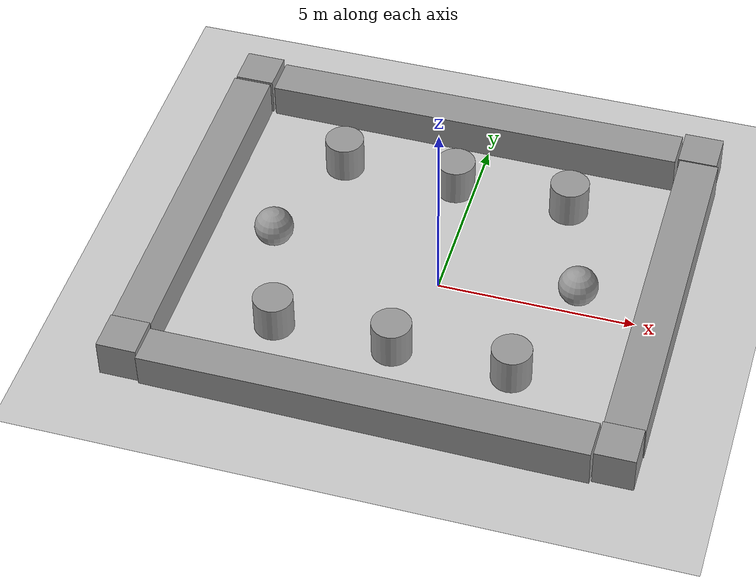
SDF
<sdf version="1.7">
 <world name="default">
  <light name="sun" type="directional">
   <pose>0 0 10 0 -0 0</pose>
   <diffuse>0.8 0.8 0.8 1</diffuse>
   <specular>0.2 0.2 0.2 1</specular>
   <attenuation>
    <range>1000</range>
    <constant>0.9</constant>
    <linear>0.01</linear>
    <quadratic>0.001</quadratic>
   </attenuation>
   <direction>-0.5 0.1 -0.9</direction>
   <spot><inner_angle>0</inner_angle><outer_angle>0</outer_angle><falloff>0</falloff></spot>
  </light>
  <model name="ground_plane">
   <static>1</static>
   <link name="link">
    <collision name="collision">
     <geometry><plane><normal>0 0 1</normal><size>100 100</size></plane></geometry>
     <surface><friction><ode><mu>100</mu><mu2>50</mu2></ode></friction></surface>
    </collision>
    <visual name="visual">
     <cast_shadows>0</cast_shadows>
     <geometry><plane><normal>0 0 1</normal><size>100 100</size></plane></geometry>
     <material>
      <script><uri>file://media/materials/scripts/gazebo.material</uri><name>Gazebo/Grey</name></script>
     </material>
    </visual>
   </link>
  </model>
  <gravity>0 0 -9.8</gravity>
  <magnetic_field>6e-06 2.3e-05 -4.2e-05</magnetic_field>
  <atmosphere type="adiabatic"/>
  <physics type="ode">
   <max_step_size>0.001</max_step_size>
   <real_time_factor>1</real_time_factor>
   <real_time_update_rate>1000</real_time_update_rate>
  </physics>
  <scene><ambient>0.4 0.4 0.4 1</ambient><background>0.7 0.7 0.7 1</background><shadows>1</shadows></scene>
  <audio><device>default</device></audio>
  <spherical_coordinates>
   <surface_model>EARTH_WGS84</surface_model>
   <latitude_deg>0</latitude_deg>
   <longitude_deg>0</longitude_deg>
   <elevation>0</elevation>
   <heading_deg>0</heading_deg>
  </spherical_coordinates>
  <model name="unit_box">
   <pose>5.49655 5.59448 0.499105 0 7e-06 0.00106</pose>
   <link name="link">
    <inertial>
     <mass>1</mass>
     <inertia>
      <ixx>0.166667</ixx>
      <ixy>0</ixy>
      <ixz>0</ixz>
      <iyy>0.166667</iyy>
      <iyz>0</iyz>
      <izz>0.166667</izz>
     </inertia>
    </inertial>
    <collision name="collision"><geometry><box><size>1 1 1</size></box></geometry></collision>
    <visual name="visual">
     <geometry><box><size>1 1 1</size></box></geometry>
     <material>
      <script><name>Gazebo/Grey</name><uri>file://media/materials/scripts/gazebo.material</uri></script>
     </material>
    </visual>
    <enable_wind>1</enable_wind>
   </link>
   <enable_wind>1</enable_wind>
  </model>
  <model name="unit_box_0">
   <pose>-6.49729 5.59816 0.5 0 0 -0.005687</pose>
   <link name="link">
    <inertial>
     <mass>1</mass>
     <inertia>
      <ixx>0.166667</ixx>
      <ixy>0</ixy>
      <ixz>0</ixz>
      <iyy>0.166667</iyy>
      <iyz>0</iyz>
      <izz>0.166667</izz>
     </inertia>
    </inertial>
    <collision name="collision"><geometry><box><size>1 1 1</size></box></geometry></collision>
    <visual name="visual">
     <geometry><box><size>1 1 1</size></box></geometry>
     <material>
      <script><name>Gazebo/Grey</name><uri>file://media/materials/scripts/gazebo.material</uri></script>
     </material>
    </visual>
   </link>
  </model>
  <model name="unit_box_1">
   <pose>-0.48964 5.51101 0.439027 0.000109 -0.011255 -0.009692</pose>
   <link name="link">
    <inertial>
     <mass>1</mass>
     <inertia>
      <ixx>0.166667</ixx>
      <ixy>0</ixy>
      <ixz>0</ixz>
      <iyy>0.166667</iyy>
      <iyz>0</iyz>
      <izz>0.166667</izz>
     </inertia>
    </inertial>
    <collision name="collision"><geometry><box><size>10.8705 1 1</size></box></geometry></collision>
    <visual name="visual">
     <geometry><box><size>10.8705 1 1</size></box></geometry>
     <material>
      <script><name>Gazebo/Grey</name><uri>file://media/materials/scripts/gazebo.material</uri></script>
     </material>
    </visual>
   </link>
  </model>
  <model name="unit_box_2">
   <pose>5.56096 0.488694 0.470161 0.006531 -2.8e-05 0.00424</pose>
   <link name="link">
    <inertial>
     <mass>1</mass>
     <inertia>
      <ixx>0.166667</ixx>
      <ixy>0</ixy>
      <ixz>0</ixz>
      <iyy>0.166667</iyy>
      <iyz>0</iyz>
      <izz>0.166667</izz>
     </inertia>
    </inertial>
    <collision name="collision"><geometry><box><size>1 9.15514 1</size></box></geometry></collision>
    <visual name="visual">
     <geometry><box><size>1 9.15514 1</size></box></geometry>
     <material>
      <script><name>Gazebo/Grey</name><uri>file://media/materials/scripts/gazebo.material</uri></script>
     </material>
    </visual>
   </link>
  </model>
  <model name="unit_box_3">
   <pose>-6.543 0.516297 0.471718 0.006269 2e-05 -0.003319</pose>
   <link name="link">
    <inertial>
     <mass>1</mass>
     <inertia>
      <ixx>0.166667</ixx>
      <ixy>0</ixy>
      <ixz>0</ixz>
      <iyy>0.166667</iyy>
      <iyz>0</iyz>
      <izz>0.166667</izz>
     </inertia>
    </inertial>
    <collision name="collision"><geometry><box><size>1 9.03895 1</size></box></geometry></collision>
    <visual name="visual">
     <geometry><box><size>1 9.03895 1</size></box></geometry>
     <material>
      <script><name>Gazebo/Grey</name><uri>file://media/materials/scripts/gazebo.material</uri></script>
     </material>
    </visual>
   </link>
  </model>
  <model name="unit_box_4">
   <pose>-0.51668 -4.6191 0.434026 0.000124 -0.011948 -0.010403</pose>
   <link name="link">
    <inertial>
     <mass>1</mass>
     <inertia>
      <ixx>0.166667</ixx>
      <ixy>0</ixy>
      <ixz>0</ixz>
      <iyy>0.166667</iyy>
      <iyz>0</iyz>
      <izz>0.166667</izz>
     </inertia>
    </inertial>
    <collision name="collision"><geometry><box><size>11.0807 1 1</size></box></geometry></collision>
    <visual name="visual">
     <geometry><box><size>11.0807 1 1</size></box></geometry>
     <material>
      <script><name>Gazebo/Grey</name><uri>file://media/materials/scripts/gazebo.material</uri></script>
     </material>
    </visual>
   </link>
  </model>
  <model name="unit_box_5">
   <pose>-6.56781 -4.50561 0.499996 -7e-06 -0 -0.001397</pose>
   <link name="link">
    <inertial>
     <mass>1</mass>
     <inertia>
      <ixx>0.166667</ixx>
      <ixy>0</ixy>
      <ixz>0</ixz>
      <iyy>0.166667</iyy>
      <iyz>0</iyz>
      <izz>0.166667</izz>
     </inertia>
    </inertial>
    <collision name="collision"><geometry><box><size>1 1 1</size></box></geometry></collision>
    <visual name="visual">
     <geometry><box><size>1 1 1</size></box></geometry>
     <material>
      <script><name>Gazebo/Grey</name><uri>file://media/materials/scripts/gazebo.material</uri></script>
     </material>
    </visual>
   </link>
  </model>
  <model name="unit_box_6">
   <pose>5.56065 -4.601 0.495737 0 -0 0.002175</pose>
   <link name="link">
    <inertial>
     <mass>1</mass>
     <inertia>
      <ixx>0.166667</ixx>
      <ixy>0</ixy>
      <ixz>0</ixz>
      <iyy>0.166667</iyy>
      <iyz>0</iyz>
      <izz>0.166667</izz>
     </inertia>
    </inertial>
    <collision name="collision"><geometry><box><size>1 1 1</size></box></geometry></collision>
    <visual name="visual">
     <geometry><box><size>1 1 1</size></box></geometry>
     <material>
      <script><name>Gazebo/Grey</name><uri>file://media/materials/scripts/gazebo.material</uri></script>
     </material>
    </visual>
   </link>
  </model>
  <model name="unit_cylinder">
   <pose>-3.49559 3.50647 0.499993 -3e-06 2e-06 0</pose>
   <link name="link">
    <inertial>
     <mass>1</mass>
     <inertia><ixx>0.145833</ixx><ixy>0</ixy><ixz>0</ixz><iyy>0.145833</iyy><iyz>0</iyz><izz>0.125</izz></inertia>
    </inertial>
    <collision name="collision">
     <geometry><cylinder><radius>0.5</radius><length>1</length></cylinder></geometry>
    </collision>
    <visual name="visual">
     <geometry><cylinder><radius>0.5</radius><length>1</length></cylinder></geometry>
     <material>
      <script><name>Gazebo/Grey</name><uri>file://media/materials/scripts/gazebo.material</uri></script>
     </material>
    </visual>
   </link>
  </model>
  <model name="unit_cylinder_0">
   <pose>-0.488042 3.46939 0.499998 3e-06 -2e-06 0</pose>
   <link name="link">
    <inertial>
     <mass>1</mass>
     <inertia><ixx>0.145833</ixx><ixy>0</ixy><ixz>0</ixz><iyy>0.145833</iyy><iyz>0</iyz><izz>0.125</izz></inertia>
    </inertial>
    <collision name="collision">
     <geometry><cylinder><radius>0.5</radius><length>1</length></cylinder></geometry>
    </collision>
    <visual name="visual">
     <geometry><cylinder><radius>0.5</radius><length>1</length></cylinder></geometry>
     <material>
      <script><name>Gazebo/Grey</name><uri>file://media/materials/scripts/gazebo.material</uri></script>
     </material>
    </visual>
   </link>
  </model>
  <model name="unit_cylinder_1">
   <pose>2.52462 3.45375 0.499993 -3e-06 3e-06 0</pose>
   <link name="link">
    <inertial>
     <mass>1</mass>
     <inertia><ixx>0.145833</ixx><ixy>0</ixy><ixz>0</ixz><iyy>0.145833</iyy><iyz>0</iyz><izz>0.125</izz></inertia>
    </inertial>
    <collision name="collision">
     <geometry><cylinder><radius>0.5</radius><length>1</length></cylinder></geometry>
    </collision>
    <visual name="visual">
     <geometry><cylinder><radius>0.5</radius><length>1</length></cylinder></geometry>
     <material>
      <script><name>Gazebo/Grey</name><uri>file://media/materials/scripts/gazebo.material</uri></script>
     </material>
    </visual>
   </link>
  </model>
  <model name="unit_sphere">
   <pose>-4.42496 0.426594 0.5 0 -0 0</pose>
   <link name="link">
    <inertial>
     <mass>1</mass>
     <inertia><ixx>0.1</ixx><ixy>0</ixy><ixz>0</ixz><iyy>0.1</iyy><iyz>0</iyz><izz>0.1</izz></inertia>
    </inertial>
    <collision name="collision"><geometry><sphere><radius>0.5</radius></sphere></geometry></collision>
    <visual name="visual">
     <geometry><sphere><radius>0.5</radius></sphere></geometry>
     <material>
      <script><name>Gazebo/Grey</name><uri>file://media/materials/scripts/gazebo.material</uri></script>
     </material>
    </visual>
   </link>
  </model>
  <model name="unit_sphere_0">
   <pose>3.45387 0.452491 0.5 0 -0 0</pose>
   <link name="link">
    <inertial>
     <mass>1</mass>
     <inertia><ixx>0.1</ixx><ixy>0</ixy><ixz>0</ixz><iyy>0.1</iyy><iyz>0</iyz><izz>0.1</izz></inertia>
    </inertial>
    <collision name="collision"><geometry><sphere><radius>0.5</radius></sphere></geometry></collision>
    <visual name="visual">
     <geometry><sphere><radius>0.5</radius></sphere></geometry>
     <material>
      <script><name>Gazebo/Grey</name><uri>file://media/materials/scripts/gazebo.material</uri></script>
     </material>
    </visual>
   </link>
  </model>
  <model name="unit_cylinder_2">
   <pose>-3.50701 -2.39904 0.499998 3e-06 -3e-06 0</pose>
   <link name="link">
    <inertial>
     <mass>1</mass>
     <inertia><ixx>0.145833</ixx><ixy>0</ixy><ixz>0</ixz><iyy>0.145833</iyy><iyz>0</iyz><izz>0.125</izz></inertia>
    </inertial>
    <collision name="collision">
     <geometry><cylinder><radius>0.5</radius><length>1</length></cylinder></geometry>
    </collision>
    <visual name="visual">
     <geometry><cylinder><radius>0.5</radius><length>1</length></cylinder></geometry>
     <material>
      <script><name>Gazebo/Grey</name><uri>file://media/materials/scripts/gazebo.material</uri></script>
     </material>
    </visual>
   </link>
  </model>
  <model name="unit_cylinder_3">
   <pose>-0.498804 -2.44321 0.499992 -3e-06 3e-06 0</pose>
   <link name="link">
    <inertial>
     <mass>1</mass>
     <inertia><ixx>0.145833</ixx><ixy>0</ixy><ixz>0</ixz><iyy>0.145833</iyy><iyz>0</iyz><izz>0.125</izz></inertia>
    </inertial>
    <collision name="collision">
     <geometry><cylinder><radius>0.5</radius><length>1</length></cylinder></geometry>
    </collision>
    <visual name="visual">
     <geometry><cylinder><radius>0.5</radius><length>1</length></cylinder></geometry>
     <material>
      <script><name>Gazebo/Grey</name><uri>file://media/materials/scripts/gazebo.material</uri></script>
     </material>
    </visual>
   </link>
  </model>
  <model name="unit_cylinder_4">
   <pose>2.49577 -2.48743 0.499992 -3e-06 3e-06 0</pose>
   <link name="link">
    <inertial>
     <mass>1</mass>
     <inertia><ixx>0.145833</ixx><ixy>0</ixy><ixz>0</ixz><iyy>0.145833</iyy><iyz>0</iyz><izz>0.125</izz></inertia>
    </inertial>
    <collision name="collision">
     <geometry><cylinder><radius>0.5</radius><length>1</length></cylinder></geometry>
    </collision>
    <visual name="visual">
     <geometry><cylinder><radius>0.5</radius><length>1</length></cylinder></geometry>
     <material>
      <script><name>Gazebo/Grey</name><uri>file://media/materials/scripts/gazebo.material</uri></script>
     </material>
    </visual>
   </link>
  </model>
 </world>
</sdf>
